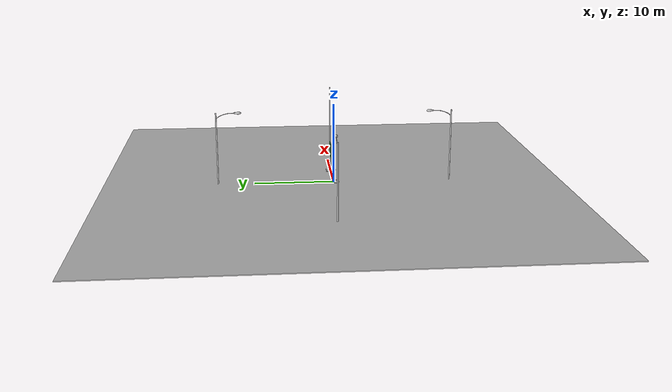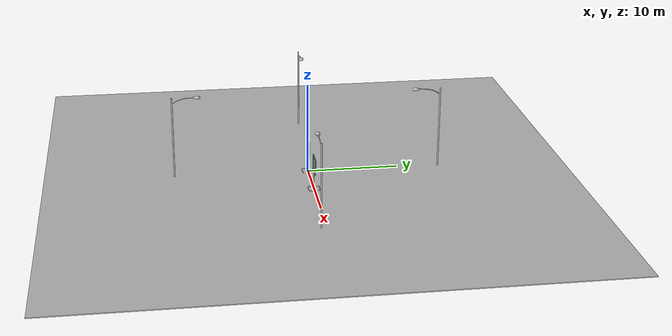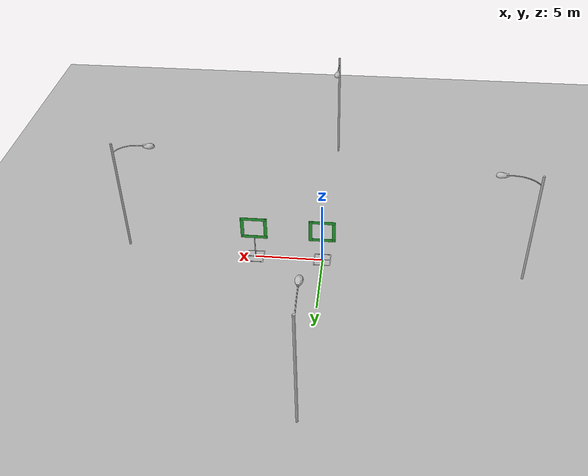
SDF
<sdf version="1.6">
 <world name="default">
  <physics type="ode">
   <ode>
    <solver><type>quick</type><iters>100</iters><sor>1.0</sor></solver>
    <constraints>
     <cfm>0.0</cfm>
     <erp>0.9</erp>
     <contact_max_correcting_vel>0.1</contact_max_correcting_vel>
     <contact_surface_layer>0.0</contact_surface_layer>
    </constraints>
   </ode>
   <real_time_update_rate>1000</real_time_update_rate>
   <max_step_size>0.0010</max_step_size>
  </physics>
  <scene>
   <sky><clouds><speed>12</speed></clouds></sky>
   <ambient>0.4 0.4 0.4 1</ambient>
   <background>0.25 0.25 0.25 1</background>
  </scene>
  <light name="sun" type="directional">
   <pose>0 0 10 0 -0 0</pose>
   <diffuse>0.8 0.8 0.8 1</diffuse>
   <specular>0.2 0.2 0.2 1</specular>
   <attenuation>
    <range>1000</range>
    <constant>0.9</constant>
    <linear>0.01</linear>
    <quadratic>0.001</quadratic>
   </attenuation>
   <direction>-0.5 0.1 -0.9</direction>
  </light>
  <model name="basketball_court">
   <pose>0.4 0 0 0 -0 1.5708</pose>
   <static>1</static>
   <link name="floor">
    <collision name="collision"><geometry><box><size>57.5 57.5 0.1</size></box></geometry></collision>
    <visual name="visual">
     <cast_shadows>0</cast_shadows>
     <geometry><box><size>57.5 57.5 0.1</size></box></geometry>
     <material>
      <script>
       <uri>model://basketball_court/materials/scripts</uri>
       <uri>model://basketball_court/materials/textures</uri>
       <name>basketball_court</name>
      </script>
     </material>
    </visual>
   </link>
  </model>
  <gravity>0 0 -9.8</gravity>
  <magnetic_field>6e-06 2.3e-05 -4.2e-05</magnetic_field>
  <atmosphere type="adiabatic"/>
  <scene><ambient>0.4 0.4 0.4 1</ambient><background>0.7 0.7 0.7 1</background><shadows>1</shadows></scene>
  <spherical_coordinates>
   <surface_model>EARTH_WGS84</surface_model>
   <latitude_deg>0</latitude_deg>
   <longitude_deg>0</longitude_deg>
   <elevation>0</elevation>
   <heading_deg>0</heading_deg>
  </spherical_coordinates>
  <model name="South Lamp Post">
   <model name="Lamp Post">
    <static>1</static>
    <link name="link">
     <collision name="collision">
      <geometry><mesh><uri>model://lamp_post/meshes/lamp_post.dae</uri><scale>3 3 3</scale></mesh></geometry>
     </collision>
     <visual name="visual">
      <geometry><mesh><uri>model://lamp_post/meshes/lamp_post.dae</uri><scale>3 3 3</scale></mesh></geometry>
     </visual>
    </link>
    <pose>2e-06 0 0 0 -0 0</pose>
   </model>
   <static>0</static>
   <pose>-0.232405 -14.6346 0 0 -0 3.14159</pose>
  </model>
  <model name="North Lamp Post">
   <model name="Lamp Post">
    <static>1</static>
    <link name="link">
     <collision name="collision">
      <geometry><mesh><uri>model://lamp_post/meshes/lamp_post.dae</uri><scale>3 3 3</scale></mesh></geometry>
     </collision>
     <visual name="visual">
      <geometry><mesh><uri>model://lamp_post/meshes/lamp_post.dae</uri><scale>3 3 3</scale></mesh></geometry>
     </visual>
    </link>
    <pose>2e-06 0 0 0 -0 0</pose>
   </model>
   <static>0</static>
   <pose>0.305297 14.5305 0 0 -0 0</pose>
  </model>
  <model name="East Lamp Post">
   <model name="Lamp Post">
    <static>1</static>
    <link name="link">
     <collision name="collision">
      <geometry><mesh><uri>model://lamp_post/meshes/lamp_post.dae</uri><scale>3 3 3</scale></mesh></geometry>
     </collision>
     <visual name="visual">
      <geometry><mesh><uri>model://lamp_post/meshes/lamp_post.dae</uri><scale>3 3 3</scale></mesh></geometry>
     </visual>
    </link>
    <pose>2e-06 0 0 0 -0 0</pose>
   </model>
   <static>0</static>
   <pose>14.7302 -0.638499 0 0 0 -1.5708</pose>
  </model>
  <model name="West Lamp Post">
   <model name="Lamp Post">
    <static>1</static>
    <link name="link">
     <collision name="collision">
      <geometry><mesh><uri>model://lamp_post/meshes/lamp_post.dae</uri><scale>3 3 3</scale></mesh></geometry>
     </collision>
     <visual name="visual">
      <geometry><mesh><uri>model://lamp_post/meshes/lamp_post.dae</uri><scale>3 3 3</scale></mesh></geometry>
     </visual>
    </link>
    <pose>2e-06 0 0 0 -0 0</pose>
   </model>
   <static>0</static>
   <pose>-14.5852 0.835438 0 0 -0 1.5708</pose>
  </model>
  <include><uri>model://custom_gate</uri></include>
  <include><uri>model://custom_gate</uri><pose>5 0 0 0 0 0</pose></include>
 </world>
</sdf>

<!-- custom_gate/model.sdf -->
<sdf version="1.6">
  <model name="custom_gate">
    <static>true</static>
    <pose>0 0 0 0 0 0</pose>

    <!-- Detection Envelopes -->
    <link name="paper_back0">
      <pose>0 0.05 2 0 0 0</pose>
      <collision name="collision">
        <geometry>
          <box>
            <size>0.1 0.01 0.1</size>
          </box>
        </geometry>
      </collision>
      <visual name="visual">
        <geometry>
          <box>
            <size>1.85 0.01 0.25</size>
          </box>
        </geometry>
          <material>
            <script>
              <name>Gazebo/Green</name>
            </script>
          </material>
      </visual>
    </link>

    <link name="paper_back1">
      <pose>0.85 0.05 2.8 0 1.57 0</pose>
      <collision name="collision">
        <geometry>
          <box>
            <size>0.1 0.01 0.1</size>
          </box>
        </geometry>
      </collision>
      <visual name="visual">
        <geometry>
          <box>
            <size>1.85 0.01 0.25</size>
          </box>
        </geometry>
          <material>
            <script>
              <name>Gazebo/Green</name>
            </script>
          </material>
      </visual>
    </link>

    <link name="paper_back2">
      <pose>-0.85 0.05 2.8 0 1.57 0</pose>
      <collision name="collision">
        <geometry>
          <box>
            <size>0.1 0.01 0.1</size>
          </box>
        </geometry>
      </collision>
      <visual name="visual">
        <geometry>
          <box>
            <size>1.85 0.01 0.25</size>
          </box>
        </geometry>
          <material>
            <script>
              <name>Gazebo/Green</name>
            </script>
          </material>
      </visual>
    </link>

    <link name="paper_back3">
      <pose>0 0.05 3.6 0 0 0</pose>
      <collision name="collision">
        <geometry>
          <box>
            <size>0.1 0.01 0.1</size>
          </box>
        </geometry>
      </collision>
      <visual name="visual">
        <geometry>
          <box>
            <size>1.85 0.01 0.25</size>
          </box>
        </geometry>
          <material>
            <script>
              <name>Gazebo/Green</name>
            </script>
          </material>
      </visual>
    </link>

    <!-- Gate Model -->
    <link name='dronerace_gate'>
      <pose>0 0 0 0 0 0</pose>
      <visual name='gate_visual'>
        <geometry>
          <mesh>
            <uri>model://dronerace_gate_2018/normal_gate_2018.dae</uri>
            <scale>1.2 1.2 1.2</scale>
          </mesh>
        </geometry>
      </visual>
      <collision name='gate_collision'>
        <geometry>
          <mesh>
            <uri>model://dronerace_gate_2018/normal_gate_2018.dae</uri>
            <scale>1.2 1.2 1.2</scale>
          </mesh>
        </geometry>
        <max_contacts>10</max_contacts>
        <surface>
          <contact>
            <ode/>
          </contact>
          <bounce/>
          <friction>
            <torsional>
              <ode/>
            </torsional>
            <ode/>
          </friction>
        </surface>
      </collision>
    </link>
  </model>
</sdf>
